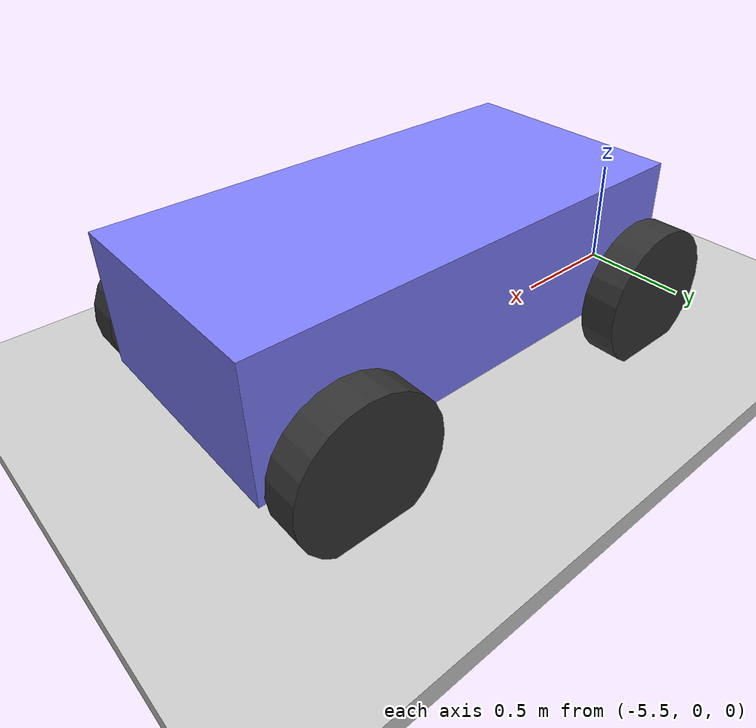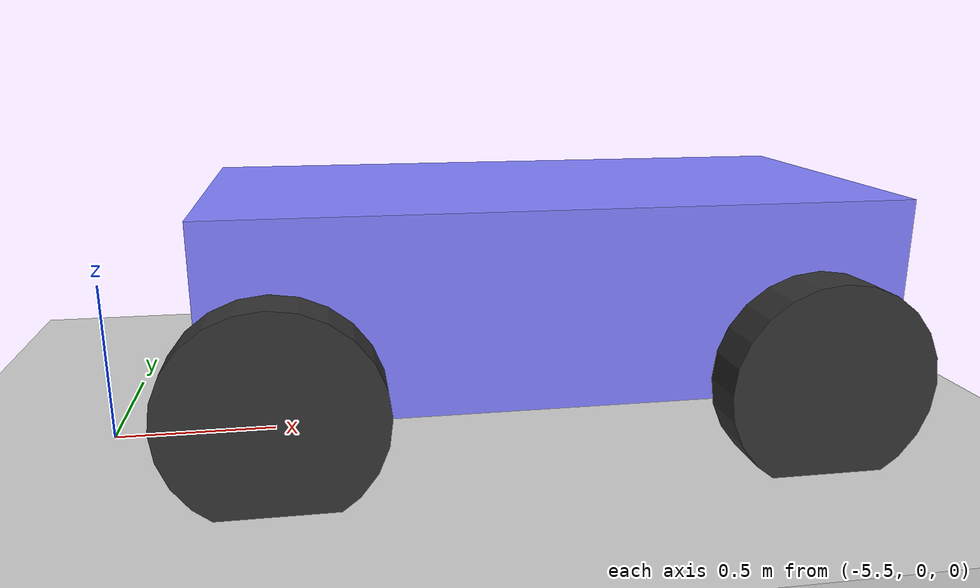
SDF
<?xml version="1.0" ?>
<sdf version="1.9">
  <world name="visualize_lidar_world">
  <physics name="1ms" type="ode">
    <max_step_size>0.001</max_step_size> <!-- The time step size -->
    <real_time_update_rate>1000</real_time_update_rate> <!-- Increases the physics engine frequency -->
    <real_time_factor>1.0</real_time_factor> <!-- Keeps simulation time synchronized with real time -->
  </physics>
    <plugin
      filename="gz-sim-physics-system"
      name="gz::sim::systems::Physics">
    </plugin>
    <plugin
      filename="gz-sim-sensors-system"
      name="gz::sim::systems::Sensors">
      <render_engine>ogre2</render_engine>
    </plugin>
    <plugin
      filename="gz-sim-scene-broadcaster-system"
      name="gz::sim::systems::SceneBroadcaster">
    </plugin>

    <gui fullscreen="0">

      <!-- 3D scene -->
      <plugin filename="MinimalScene" name="3D View">
        <gz-gui>
          <title>3D View</title>
          <property type="bool" key="showTitleBar">false</property>
          <property type="string" key="state">docked</property>
        </gz-gui>

        <engine>ogre2</engine>
        <scene>scene</scene>
        <ambient_light>0.4 0.4 0.4</ambient_light>
        <background_color>0.8 0.8 0.8</background_color>
        <camera_pose>-6 0 6 0 0.5 0</camera_pose>
      </plugin>

      <!-- Plugins that add functionality to the scene -->
      <plugin filename="EntityContextMenuPlugin" name="Entity context menu">
        <gz-gui>
          <property key="state" type="string">floating</property>
          <property key="width" type="double">5</property>
          <property key="height" type="double">5</property>
          <property key="showTitleBar" type="bool">false</property>
        </gz-gui>
      </plugin>
      <plugin filename="GzSceneManager" name="Scene Manager">
        <gz-gui>
          <property key="resizable" type="bool">false</property>
          <property key="width" type="double">5</property>
          <property key="height" type="double">5</property>
          <property key="state" type="string">floating</property>
          <property key="showTitleBar" type="bool">false</property>
        </gz-gui>
      </plugin>
      <plugin filename="InteractiveViewControl" name="Interactive view control">
        <gz-gui>
          <property key="resizable" type="bool">false</property>
          <property key="width" type="double">5</property>
          <property key="height" type="double">5</property>
          <property key="state" type="string">floating</property>
          <property key="showTitleBar" type="bool">false</property>
        </gz-gui>
      </plugin>
      <plugin filename="CameraTracking" name="Camera Tracking">
        <gz-gui>
          <property key="resizable" type="bool">false</property>
          <property key="width" type="double">5</property>
          <property key="height" type="double">5</property>
          <property key="state" type="string">floating</property>
          <property key="showTitleBar" type="bool">false</property>
        </gz-gui>
      </plugin>
      <!-- World contro l -->
      <plugin filename="WorldControl" name="World control">
        <gz-gui>
          <title>World control</title>
          <property type="bool" key="showTitleBar">false</property>
          <property type="bool" key="resizable">false</property>
          <property type="double" key="height">72</property>
          <property type="double" key="z">1</property>

          <property type="string" key="state">floating</property>
          <anchors target="3D View">
            <line own="left" target="left"/>
            <line own="bottom" target="bottom"/>
          </anchors>
        </gz-gui>

        <play_pause>true</play_pause>
        <step>true</step>
        <start_paused>true</start_paused>
        <use_event>true</use_event>

      </plugin>

      <!-- World statistics -->
      <plugin filename="WorldStats" name="World stats">
        <gz-gui>
          <title>World stats</title>
          <property type="bool" key="showTitleBar">false</property>
          <property type="bool" key="resizable">false</property>
          <property type="double" key="height">110</property>
          <property type="double" key="width">290</property>
          <property type="double" key="z">1</property>

          <property type="string" key="state">floating</property>
          <anchors target="3D View">
            <line own="right" target="right"/>
            <line own="bottom" target="bottom"/>
          </anchors>
        </gz-gui>

        <sim_time>true</sim_time>
        <real_time>true</real_time>
        <real_time_factor>true</real_time_factor>
        <iterations>true</iterations>
      </plugin>

      <!-- Inspector -->
      <plugin filename="ComponentInspector" name="Component inspector">
        <gz-gui>
          <property type="string" key="state">docked</property>
        </gz-gui>
      </plugin>

      <!-- Entity tree -->
      <plugin filename="EntityTree" name="Entity tree">
        <gz-gui>
          <property type="string" key="state">docked</property>
        </gz-gui>
      </plugin>
    </gui>

    <light type="directional" name="sun">
      <cast_shadows>true</cast_shadows>
      <pose>0 0 10 0 0 0</pose>
      <diffuse>0.8 0.8 0.8 1</diffuse>
      <specular>0.2 0.2 0.2 1</specular>
      <attenuation>
        <range>1000</range>
        <constant>0.9</constant>
        <linear>0.01</linear>
        <quadratic>0.001</quadratic>
      </attenuation>
      <direction>-0.5 0.1 -0.9</direction>
    </light>

    <model name="ground_plane">
      <static>true</static>
      <link name="link">
        <collision name="collision">
          <geometry>
            <box>
              <size>80 80 0.1</size>
            </box>
          </geometry>
        </collision>
        <visual name="visual">
          <geometry>
            <box>
              <size>80 80 0.1</size>
            </box>
          </geometry>
          <material>
              <ambient>0.8 0.8 0.8 1</ambient>
              <diffuse>0.8 0.8 0.8 1</diffuse>
              <specular>0.8 0.8 0.8 1</specular>
              <pbr>
                <metal>
                  <albedo_map>living_room/materials/textures/floor_texture.png</albedo_map>
                </metal>
              </pbr>
          </material>
        </visual>
      </link>
    </model>

    <model name='vehicle_blue'>
      <pose>-4 0 0.325 0 0 0</pose>

      <link name='chassis'>
        <pose>-0.151427 -0 0.175 0 -0 0</pose>
        <inertial>
          <mass>1.14395</mass>
          <inertia>
            <ixx>0.126164</ixx>
            <ixy>0</ixy>
            <ixz>0</ixz>
            <iyy>0.416519</iyy>
            <iyz>0</iyz>
            <izz>0.481014</izz>
          </inertia>
        </inertial>
        <visual name='visual'>
          <geometry>
            <box>
              <size>2.01142 1 0.568726</size>
            </box>
          </geometry>
          <material>
            <ambient>0.5 0.5 1.0 1</ambient>
            <diffuse>0.5 0.5 1.0 1</diffuse>
            <specular>0.0 0.0 1.0 1</specular>
          </material>
        </visual>
        <collision name='collision'>
          <geometry>
            <box>
              <size>2.01142 1 0.568726</size>
            </box>
          </geometry>
        </collision>
      </link>

      <link name='front_left_wheel'>
        <pose>0.554283 0.625029 -0.025 -1.5707 0 0</pose>
        <inertial>
          <mass>2</mass>
          <inertia>
            <ixx>0.145833</ixx>
            <ixy>0</ixy>
            <ixz>0</ixz>
            <iyy>0.145833</iyy>
            <iyz>0</iyz>
            <izz>0.125</izz>
          </inertia>
        </inertial>
        <visual name='visual'>
          <geometry>
            <cylinder>
              <length>0.15</length>
              <radius>0.3</radius>
            </cylinder>
          </geometry>
          <material>
            <ambient>0.2 0.2 0.2 1</ambient>
            <diffuse>0.2 0.2 0.2 1</diffuse>
            <specular>0.2 0.2 0.2 1</specular>
          </material>
        </visual>
        <collision name='collision'>
          <geometry>
            <cylinder>
              <length>0.15</length>
              <radius>0.3</radius>
            </cylinder>
          </geometry>
          <surface>
            <friction>
              <ode>
                <mu>0.5</mu>
                <mu2>1.0</mu2>
                <fdir1>0 0 1</fdir1>
              </ode>
            </friction>
          </surface>
        </collision>
      </link>

      <link name='rear_left_wheel'>
        <pose>-0.957138 0.625029 -0.025 -1.5707 0 0</pose>
        <inertial>
          <mass>2</mass>
          <inertia>
            <ixx>0.145833</ixx>
            <ixy>0</ixy>
            <ixz>0</ixz>
            <iyy>0.145833</iyy>
            <iyz>0</iyz>
            <izz>0.125</izz>
          </inertia>
        </inertial>
        <visual name='visual'>
          <geometry>
            <cylinder>
              <length>0.15</length>
              <radius>0.3</radius>
            </cylinder>
          </geometry>
          <material>
            <ambient>0.2 0.2 0.2 1</ambient>
            <diffuse>0.2 0.2 0.2 1</diffuse>
            <specular>0.2 0.2 0.2 1</specular>
          </material>
        </visual>
        <collision name='collision'>
          <geometry>
            <cylinder>
              <length>0.15</length>
              <radius>0.3</radius>
            </cylinder>
          </geometry>
          <surface>
            <friction>
              <ode>
                <mu>0.5</mu>
                <mu2>1.0</mu2>
                <fdir1>0 0 1</fdir1>
              </ode>
            </friction>
          </surface>
        </collision>
      </link>

      <link name='front_right_wheel'>
        <pose>0.554282 -0.625029 -0.025 -1.5707 0 0</pose>
        <inertial>
          <mass>2</mass>
          <inertia>
            <ixx>0.145833</ixx>
            <ixy>0</ixy>
            <ixz>0</ixz>
            <iyy>0.145833</iyy>
            <iyz>0</iyz>
            <izz>0.125</izz>
          </inertia>
        </inertial>
        <visual name='visual'>
          <geometry>
            <cylinder>
              <length>0.15</length>
              <radius>0.3</radius>
            </cylinder>
          </geometry>
          <material>
            <ambient>0.2 0.2 0.2 1</ambient>
            <diffuse>0.2 0.2 0.2 1</diffuse>
            <specular>0.2 0.2 0.2 1</specular>
          </material>
        </visual>
        <collision name='collision'>
          <geometry>
            <cylinder>
              <length>0.15</length>
              <radius>0.3</radius>
            </cylinder>
          </geometry>
          <surface>
            <friction>
              <ode>
                <mu>0.5</mu>
                <mu2>1.0</mu2>
                <fdir1>0 0 1</fdir1>
              </ode>
            </friction>
          </surface>
        </collision>
      </link>

      <link name='rear_right_wheel'>
        <pose>-0.957138 -0.625029 -0.025 -1.5707 0 0</pose>
        <inertial>
          <mass>2</mass>
          <inertia>
            <ixx>0.145833</ixx>
            <ixy>0</ixy>
            <ixz>0</ixz>
            <iyy>0.145833</iyy>
            <iyz>0</iyz>
            <izz>0.125</izz>
          </inertia>
        </inertial>
        <visual name='visual'>
          <geometry>
            <cylinder>
              <length>0.15</length>
              <radius>0.3</radius>
            </cylinder>
          </geometry>
          <material>
            <ambient>0.2 0.2 0.2 1</ambient>
            <diffuse>0.2 0.2 0.2 1</diffuse>
            <specular>0.2 0.2 0.2 1</specular>
          </material>
        </visual>
        <collision name='collision'>
          <geometry>
            <cylinder>
              <length>0.15</length>
              <radius>0.3</radius>
            </cylinder>
          </geometry>
          <surface>
            <friction>
              <ode>
                <mu>0.5</mu>
                <mu2>1.0</mu2>
                <fdir1>0 0 1</fdir1>
              </ode>
            </friction>
          </surface>
        </collision>
      </link>

      <link name="front_left_wheel_steering_link">
        <pose>0.554283 0.5 0.02 0 0 0</pose>
        <inertial>
          <mass>0.5</mass>
          <inertia>
            <ixx>0.0153</ixx>
            <iyy>0.025</iyy>
            <izz>0.0153</izz>
          </inertia>
        </inertial>
        <visual name="steering_link_visual">
          <pose>0 0 0 0 0 0</pose>
          <geometry>
            <cylinder>
              <length>0.1</length>
              <radius>0.03</radius>
            </cylinder>
          </geometry>
          <material>
            <ambient>1 1 1</ambient>
            <diffuse>1 1 1</diffuse>
          </material>
        </visual>
      </link>

      <link name="front_right_wheel_steering_link">
        <pose>0.554283 -0.5 0.02 0 0 0</pose>
        <inertial>
          <mass>0.5</mass>
          <inertia>
            <ixx>0.0153</ixx>
            <iyy>0.025</iyy>
            <izz>0.0153</izz>
          </inertia>
        </inertial>
        <visual name="steering_link_visual">
          <pose>0 0 0 0 0 0</pose>
          <geometry>
            <cylinder>
              <length>0.1</length>
              <radius>0.03</radius>
            </cylinder>
          </geometry>
          <material>
            <ambient>1 1 1</ambient>
            <diffuse>1 1 1</diffuse>
          </material>
        </visual>
      </link>

      <joint name="front_left_wheel_steering_joint" type="revolute">
        <child>front_left_wheel_steering_link</child>
        <parent>chassis</parent>
        <axis>
          <xyz>0 0 1</xyz>
          <limit>
            <lower>-0.6</lower>
            <upper>+0.6</upper>
            <velocity>1.0</velocity>
            <effort>25</effort>
          </limit>
          <use_parent_model_frame>1</use_parent_model_frame>
        </axis>
      </joint>

      <joint name="front_right_wheel_steering_joint" type="revolute">
        <parent>chassis</parent>
        <child>front_right_wheel_steering_link</child>
        <axis>
          <xyz>0 0 1</xyz>
          <limit>
            <lower>-0.6</lower>
            <upper>+0.6</upper>
            <velocity>1.0</velocity>
            <effort>25</effort>
          </limit>
        </axis>
      </joint>

      <joint name='front_left_wheel_joint' type='revolute'>
        <parent>front_left_wheel_steering_link</parent>
        <child>front_left_wheel</child>
        <axis>
          <xyz>0 0 1</xyz>
          <limit>
            <lower>-1.79769e+308</lower>
            <upper>1.79769e+308</upper>
          </limit>
        </axis>
      </joint>

      <joint name='front_right_wheel_joint' type='revolute'>
        <parent>front_right_wheel_steering_link</parent>
        <child>front_right_wheel</child>
        <axis>
          <xyz>0 0 1</xyz>
          <limit>
            <lower>-1.79769e+308</lower>
            <upper>1.79769e+308</upper>
          </limit>
        </axis>
      </joint>

      <joint name='rear_left_wheel_joint' type='revolute'>
        <parent>chassis</parent>
        <child>rear_left_wheel</child>
        <axis>
          <xyz>0 0 1</xyz>
          <limit>
            <lower>-1.79769e+308</lower>
            <upper>1.79769e+308</upper>
          </limit>
        </axis>
      </joint>

      <joint name='rear_right_wheel_joint' type='revolute'>
        <parent>chassis</parent>
        <child>rear_right_wheel</child>
        <axis>
          <xyz>0 0 1</xyz>
          <limit>
            <lower>-1.79769e+308</lower>
            <upper>1.79769e+308</upper>
          </limit>
        </axis>
      </joint>

      <plugin
        filename="ignition-gazebo-ackermann-steering-system"
        name="gz::sim::systems::AckermannSteering">
        <left_joint>front_left_wheel_joint</left_joint>
        <left_joint>rear_left_wheel_joint</left_joint>
        <right_joint>front_right_wheel_joint</right_joint>
        <right_joint>rear_right_wheel_joint</right_joint>
        <left_steering_joint>front_left_wheel_steering_joint</left_steering_joint>
        <right_steering_joint>front_right_wheel_steering_joint</right_steering_joint>
        <kingpin_width>1.0</kingpin_width>
        <steering_limit>0.5</steering_limit>
        <wheel_base>1.0</wheel_base>
        <wheel_separation>1.25</wheel_separation>
        <wheel_radius>0.3</wheel_radius>
        <min_velocity>-1</min_velocity>
        <max_velocity>1</max_velocity>
        <min_acceleration>-3</min_acceleration>
        <max_acceleration>3</max_acceleration>
        <odom_publish_frequency>1</odom_publish_frequency>
        <odom_topic>/vehicle_blue/odom</odom_topic>
      </plugin>

    </model>

     <model name="white_plane">
      <static>true</static>
      <pose>20 -5 0.05 0 0 0</pose>

      <link name="link">
        <collision name="collision">
          <geometry>
            <box>
              <size>8 5 0.05</size>
            </box>
          </geometry>
        </collision>

        <visual name="visual">
          <geometry>
            <box>
              <size>8 5 0.05</size>
            </box>
          </geometry>
          <material>
            <ambient>1.0 1.0 1.0 1</ambient>
            <diffuse>1.0 1.0 1.0 1</diffuse>
            <specular>1.0 1.0 1.0 1</specular>
          </material>
        </visual>
      </link>
    </model>

  </world>
</sdf>
